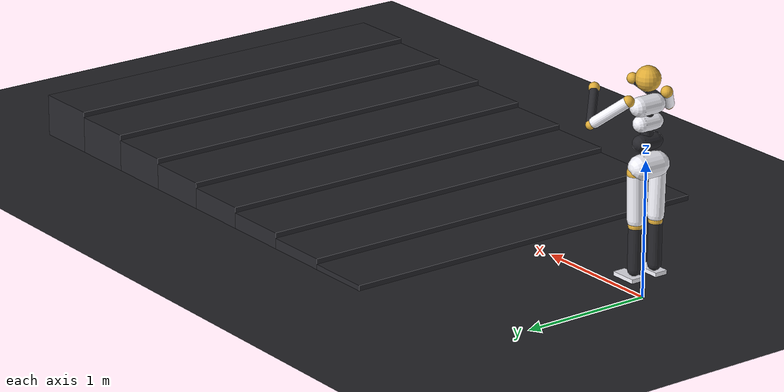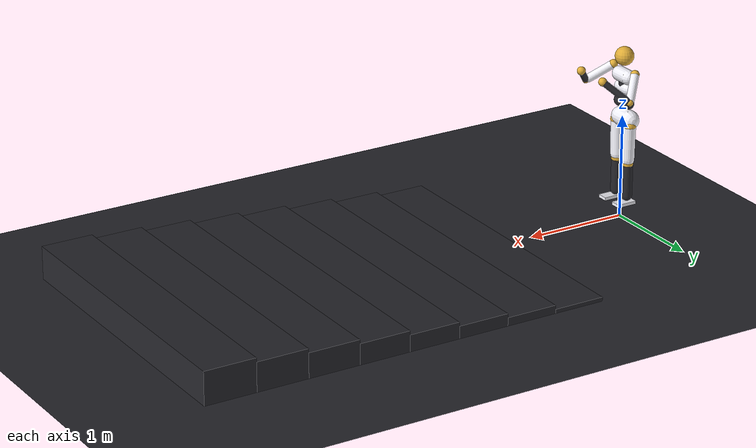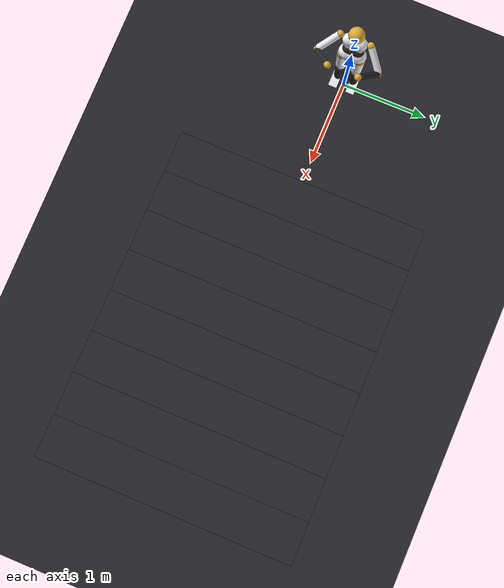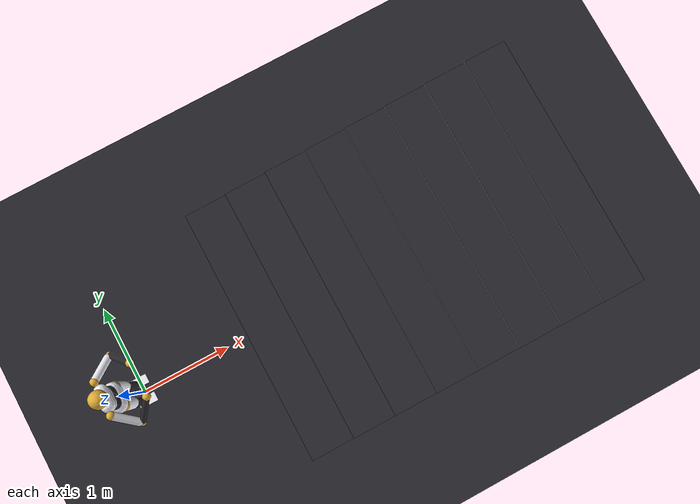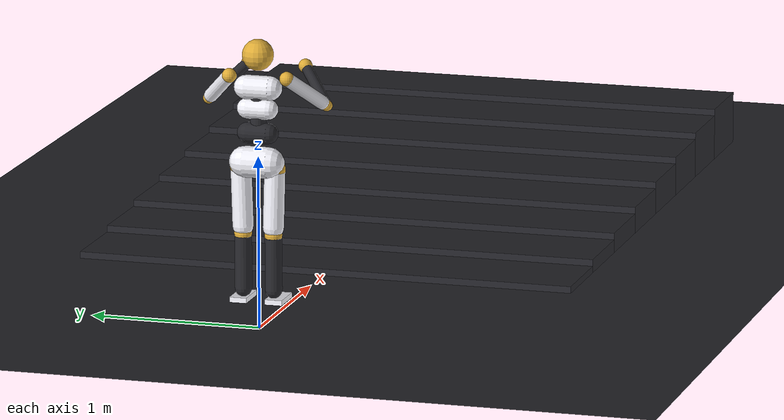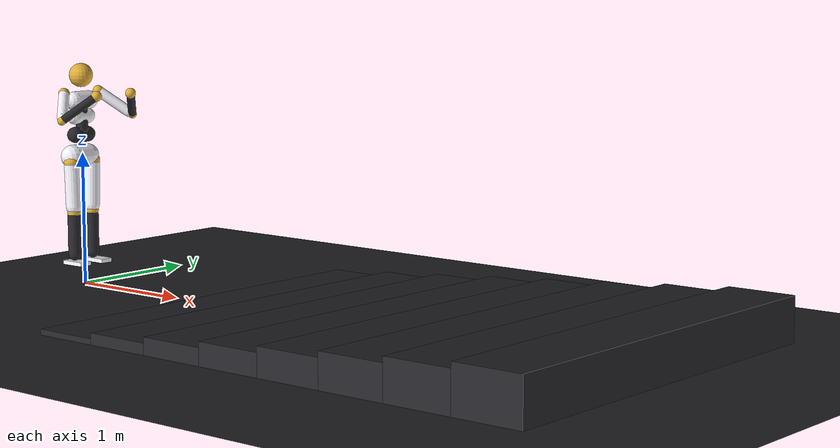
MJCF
<mujoco model="humanoid">
  <compiler angle="degree" inertiafromgeom="true"/>
  <option timestep="0.025" integrator="RK4">
    <flag contact="enable"/>
  </option>

  <default>
    <joint armature="1" damping="1" limited="true"/>
    <geom conaffinity="0" condim="3" contype="1" margin="0.001" material="polished_white"/>
    <position ctrllimited="true" ctrlrange="-3.14 3.14"/>
  </default>

  <asset>
    <texture type="skybox" builtin="gradient" rgb1="0.1 0.12 0.16" rgb2="0.02 0.02 0.03" width="512" height="512"/>
    <texture name="grid" type="2d" builtin="checker" rgb1="0.12 0.12 0.14" rgb2="0.18 0.18 0.20" width="512" height="512" mark="edge" markrgb="0.25 0.25 0.3"/>

    <material name="floor_mat" texture="grid" texrepeat="4 4" texuniform="true" reflectance="0.22" shininess="0.4"/>
    <material name="polished_white" rgba="0.95 0.95 0.98 1" shininess="0.8" specular="0.7"/>
    <material name="carbon_black" rgba="0.15 0.15 0.17 1" shininess="0.3" specular="0.3"/>
    <material name="gold_chrome" rgba="0.88 0.68 0.22 1" shininess="0.95" specular="1.0"/>
  </asset>

  <worldbody>
    <light mode="targetbodycom" target="torso" directional="false" diffuse="0.8 0.8 0.8" specular="0.3 0.3 0.3" pos="1 -4 4" dir="-0.2 0.8 -1" castshadow="true"/>
    <light mode="targetbodycom" target="torso" directional="false" diffuse="0.4 0.4 0.4" pos="-2 4 3" dir="0.5 -0.7 -1" castshadow="false"/>
    <light directional="true" diffuse="0.2 0.2 0.25" pos="0 0 5" dir="0 0 -1" castshadow="false"/>

    <geom conaffinity="1" condim="3" name="floor" pos="0 0 0" type="plane" size="40 40 40" material="floor_mat" contype="0"/>

    <geom name="stair_1" type="box" pos="1.5 0.0 0.02" size="0.25 1.5 0.02" material="carbon_black" conaffinity="1"/>
    <geom name="stair_2" type="box" pos="2.0 0.0 0.04" size="0.25 1.5 0.04" material="carbon_black" conaffinity="1"/>
    <geom name="stair_3" type="box" pos="2.5 0.0 0.06" size="0.25 1.5 0.06" material="carbon_black" conaffinity="1"/>
    <geom name="stair_4" type="box" pos="3.0 0.0 0.08" size="0.25 1.5 0.08" material="carbon_black" conaffinity="1"/>
    <geom name="stair_5" type="box" pos="3.5 0.0 0.10" size="0.25 1.5 0.10" material="carbon_black" conaffinity="1"/>
    <geom name="stair_6" type="box" pos="4.0 0.0 0.12" size="0.25 1.5 0.12" material="carbon_black" conaffinity="1"/>
    <geom name="stair_7" type="box" pos="4.5 0.0 0.14" size="0.25 1.5 0.14" material="carbon_black" conaffinity="1"/>
    <geom name="stair_8" type="box" pos="5.0 0.0 0.16" size="0.25 1.5 0.16" material="carbon_black" conaffinity="1"/>

    <body name="torso" pos="0 0 1.4">
      <camera name="track" mode="trackcom" pos="0 -3.2 0.2" xyaxes="1 0 0 0 0.1 1"/>
      <freejoint name="root"/>

      <geom fromto="0 -0.07 0 0 0.07 0" name="torso1" size="0.07" type="capsule" material="polished_white"/>
      <geom fromto="0 0 0.02 0 0 -0.24" name="spine_structural_column" size="0.045" type="capsule" material="carbon_black"/>
      <geom fromto="-0.01 -0.06 -0.12 -0.01 0.06 -0.12" name="uwaist" size="0.06" type="capsule" material="polished_white"/>

      <body name="head" pos="0 0 0.19">
        <geom name="head" size="0.09" type="sphere" material="gold_chrome"/>
      </body>

      <body name="right_upper_arm" pos="0 -0.17 0.06">
        <joint axis="2 1 1" name="right_shoulder1" pos="0 0 0" range="-85 60" stiffness="100" type="hinge"/>
        <joint axis="0 -1 1" name="right_shoulder2" pos="0 0 0" range="-85 60" stiffness="100" type="hinge"/>
        <geom type="sphere" size="0.042" material="gold_chrome"/>
        <geom fromto="0 0 0 0.16 -0.16 -0.16" name="right_uarm1" size="0.04" type="capsule" material="polished_white"/>

        <body name="right_lower_arm" pos="0.18 -0.18 -0.18">
          <joint axis="0 -1 1" name="right_elbow" pos="0 0 0" range="-90 50" stiffness="80" type="hinge"/>
          <geom type="sphere" size="0.033" material="gold_chrome"/>
          <geom fromto="0.01 0.01 0.01 0.17 0.17 0.17" name="right_larm" size="0.031" type="capsule" material="carbon_black"/>

          <body name="right_hand" pos="0.18 0.18 0.18">
            <geom name="right_hand" size="0.04" type="sphere" material="gold_chrome"/>
          </body>
        </body>
      </body>

      <body name="left_upper_arm" pos="0 0.17 0.06">
        <joint axis="2 -1 1" name="left_shoulder1" pos="0 0 0" range="-60 85" stiffness="100" type="hinge"/>
        <joint axis="0 1 1" name="left_shoulder2" pos="0 0 0" range="-60 85" stiffness="100" type="hinge"/>
        <geom type="sphere" size="0.042" material="gold_chrome"/>
        <geom fromto="0 0 0 0.16 0.16 -0.16" name="left_uarm1" size="0.04" type="capsule" material="polished_white"/>

        <body name="left_lower_arm" pos="0.18 0.18 -0.18">
          <joint axis="0 -1 -1" name="left_elbow" pos="0 0 0" range="-90 50" stiffness="80" type="hinge"/>
          <geom type="sphere" size="0.033" material="gold_chrome"/>
          <geom fromto="0.01 -0.01 0.01 0.17 -0.17 0.17" name="left_larm" size="0.031" type="capsule" material="carbon_black"/>

          <body name="left_hand" pos="0.18 -0.18 0.18">
            <geom name="left_hand" size="0.04" type="sphere" material="gold_chrome"/>
          </body>
        </body>
      </body>

      <body name="lwaist" pos="-0.01 0 -0.26">
        <geom fromto="0 -0.06 0 0 0.06 0" name="lwaist" size="0.06" type="capsule" material="carbon_black"/>
        <joint axis="0 0 1" name="abdomen_z" pos="0 0 0.065" range="-45 45" stiffness="500" type="hinge"/>
        <joint axis="0 1 0" name="abdomen_y" pos="0 0 0.065" range="-75 30" stiffness="500" type="hinge"/>

        <body name="pelvis" pos="0 0 -0.165">
          <joint axis="1 0 0" name="abdomen_x" pos="0 0 0.1" range="-35 35" stiffness="500" type="hinge"/>
          <geom fromto="-0.02 -0.07 0 -0.02 0.07 0" name="butt" size="0.09" type="capsule" material="polished_white"/>

          <body name="right_thigh" pos="0 -0.1 -0.04">
            <joint axis="-1 0 0" name="right_hip_x" pos="0 0 0" range="-25 5" stiffness="250" type="hinge"/>
            <joint axis="0 0 -1" name="right_hip_z" pos="0 0 0" range="-60 35" stiffness="250" type="hinge"/>
            <joint axis="0 1 0" name="right_hip_y" pos="0 0 0" range="-110 20" stiffness="350" type="hinge"/>
            <geom type="sphere" size="0.062" material="gold_chrome"/>
            <geom fromto="0 0 0 0 0.01 -0.34" name="right_thigh1" size="0.06" type="capsule" material="polished_white"/>

            <body name="right_shin" pos="0 0.01 -0.403">
              <joint axis="0 -1 0" name="right_knee" pos="0 0 0.02" range="-160 2" stiffness="300" type="hinge"/>
              <geom type="sphere" size="0.051" pos="0 0 0.02" material="gold_chrome"/>
              <geom fromto="0 0 0 0 0 -0.3" name="right_shin1" size="0.049" type="capsule" material="carbon_black"/>

              <body name="right_foot" pos="0 0 -0.35">
                <joint axis="1 0 0.5" name="right_ankle_x" pos="0 0 0.1" range="-50 50" stiffness="200" type="hinge"/>
                <joint axis="0 1 0" name="right_ankle_y" pos="0 0 0.1" range="-50 50" stiffness="200" type="hinge"/>
                <geom type="sphere" size="0.03" pos="0 0 0.1" material="gold_chrome"/>
                <geom name="right_foot" type="box" pos="0.04 -0.015 -0.01" size="0.10 0.05 0.015" material="polished_white"/>
              </body>
            </body>
          </body>

          <body name="left_thigh" pos="0 0.1 -0.04">
            <joint axis="-1 0 0" name="left_hip_x" pos="0 0 0" range="-25 5" stiffness="250" type="hinge"/>
            <joint axis="0 0 1" name="left_hip_z" pos="0 0 0" range="-60 35" stiffness="250" type="hinge"/>
            <joint axis="0 1 0" name="left_hip_y" pos="0 0 0" range="-110 20" stiffness="350" type="hinge"/>
            <geom type="sphere" size="0.062" material="gold_chrome"/>
            <geom fromto="0 0 0 0 -0.01 -0.34" name="left_thigh1" size="0.06" type="capsule" material="polished_white"/>

            <body name="left_shin" pos="0 -0.01 -0.403">
              <joint axis="0 -1 0" name="left_knee" pos="0 0 0.02" range="-160 2" stiffness="300" type="hinge"/>
              <geom type="sphere" size="0.051" pos="0 0 0.02" material="gold_chrome"/>
              <geom fromto="0 0 0 0 0 -0.3" name="left_shin1" size="0.049" type="capsule" material="carbon_black"/>

              <body name="left_foot" pos="0 0 -0.35">
                <joint axis="1 0 0.5" name="left_ankle_x" pos="0 0 0.1" range="-50 50" stiffness="200" type="hinge"/>
                <joint axis="0 1 0" name="left_ankle_y" pos="0 0 0.1" range="-50 50" stiffness="200" type="hinge"/>
                <geom type="sphere" size="0.03" pos="0 0 0.1" material="gold_chrome"/>
                <geom name="left_foot" type="box" pos="0.04 0.015 -0.01" size="0.10 0.05 0.015" material="polished_white"/>
              </body>
            </body>
          </body>

        </body>
      </body>
    </body>
  </worldbody>

  <actuator>
    <position joint="abdomen_y" name="abdomen_y" kp="200"/>
    <position joint="abdomen_z" name="abdomen_z" kp="200"/>
    <position joint="abdomen_x" name="abdomen_x" kp="200"/>
    <position joint="right_hip_x" name="right_hip_x" kp="250"/>
    <position joint="right_hip_z" name="right_hip_z" kp="250"/>
    <position joint="right_hip_y" name="right_hip_y" kp="350"/>
    <position joint="right_knee" name="right_knee" kp="300"/>
    <position joint="right_ankle_x" name="right_ankle_x" kp="150"/>
    <position joint="right_ankle_y" name="right_ankle_y" kp="150"/>
    <position joint="left_hip_x" name="left_hip_x" kp="250"/>
    <position joint="left_hip_z" name="left_hip_z" kp="250"/>
    <position joint="left_hip_y" name="left_hip_y" kp="350"/>
    <position joint="left_knee" name="left_knee" kp="300"/>
    <position joint="left_ankle_x" name="left_ankle_x" kp="150"/>
    <position joint="left_ankle_y" name="left_ankle_y" kp="150"/>
    <position joint="right_shoulder1" name="right_shoulder1" kp="60"/>
    <position joint="right_shoulder2" name="right_shoulder2" kp="60"/>
    <position joint="right_elbow" name="right_elbow" kp="50"/>
    <position joint="left_shoulder1" name="left_shoulder1" kp="60"/>
    <position joint="left_shoulder2" name="left_shoulder2" kp="60"/>
    <position joint="left_elbow" name="left_elbow" kp="50"/>
  </actuator>
</mujoco>
